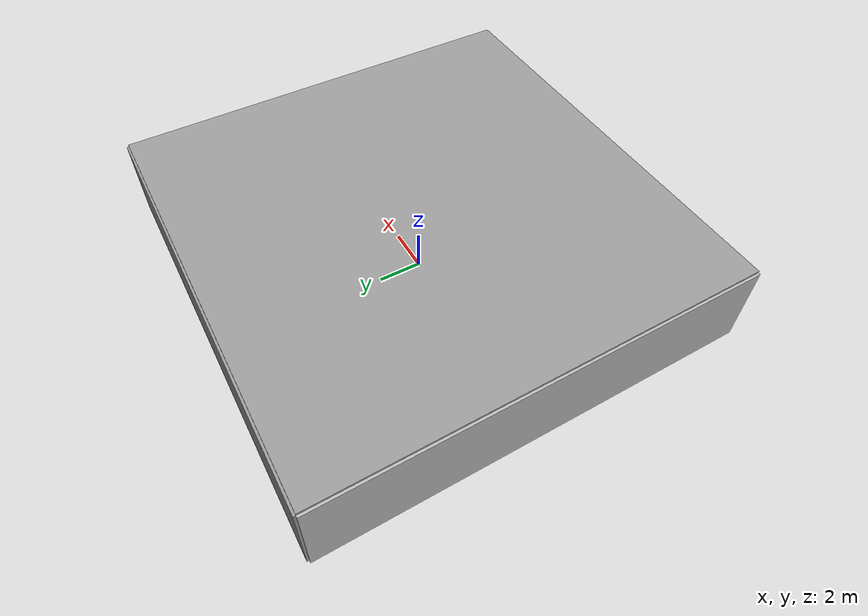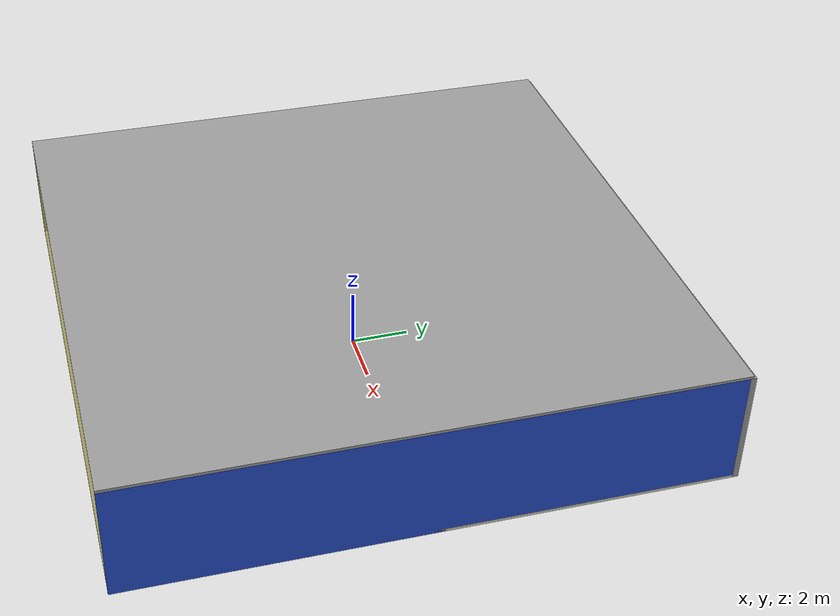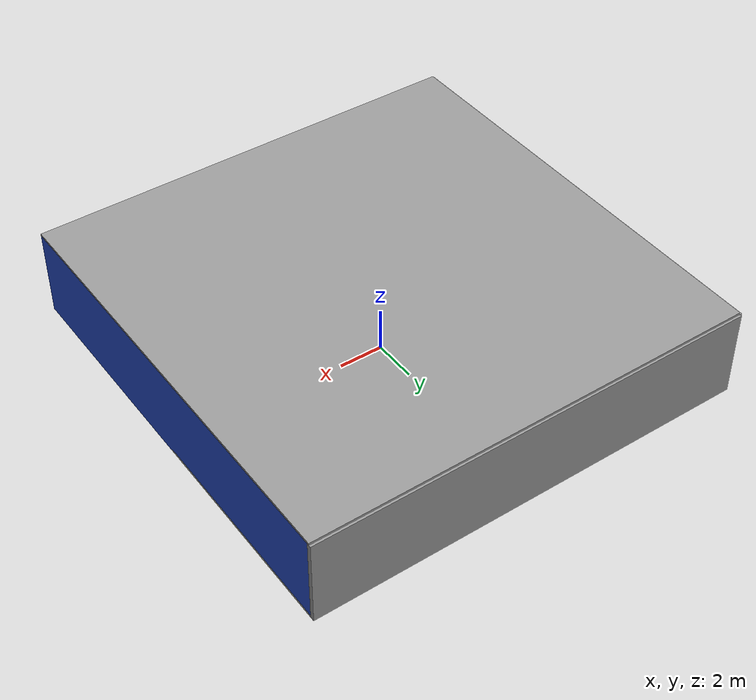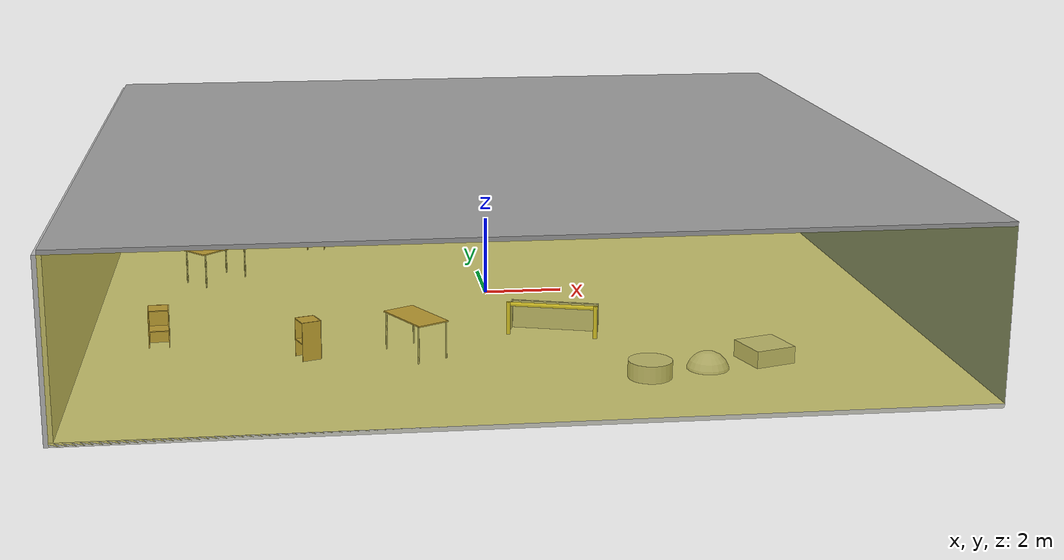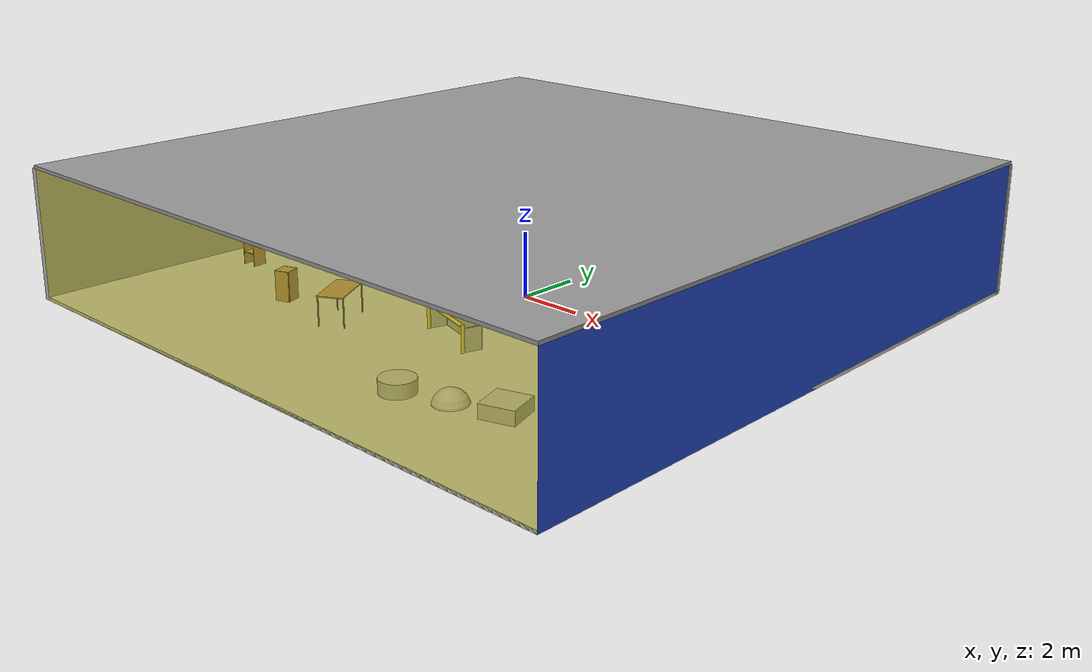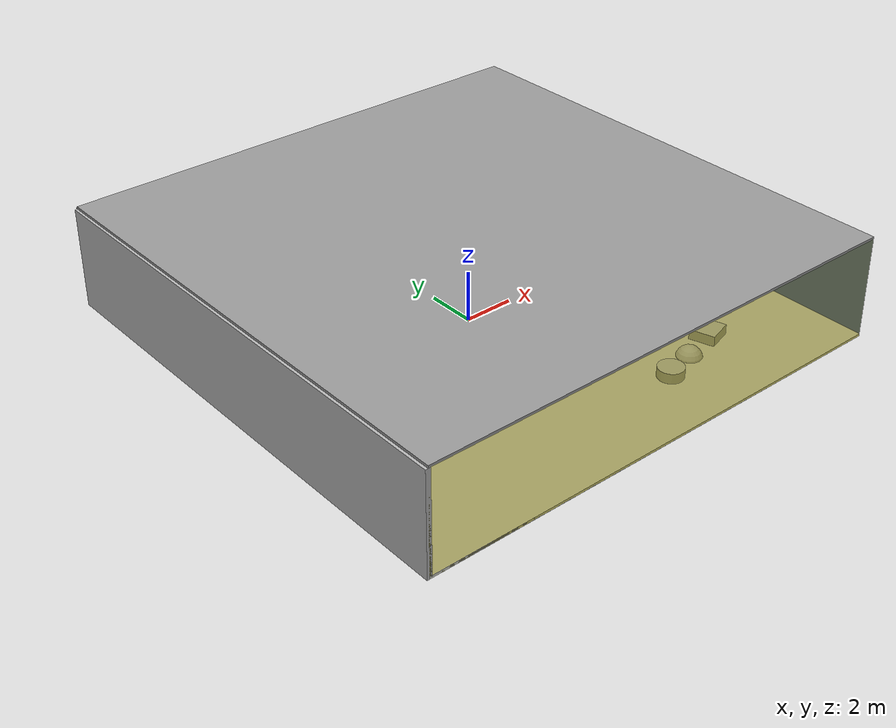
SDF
<sdf version="1.4">
 <world name="default">
  <physics type="ode">
   <max_step_size>0.001</max_step_size>
   <real_time_factor>1</real_time_factor>
   <real_time_update_rate>1000</real_time_update_rate>
   <gravity>0 0 -9.8</gravity>
  </physics>
  <scene><ambient>0.4 0.4 0.4 1</ambient><background>0.7 0.7 0.7 1</background><shadows>1</shadows></scene>
  <model name="Surrounding">
   <static>1</static>
   <link name="Ceiling">
    <collision name="Ceiling_Collision"><geometry><box><size>20 20 0.1</size></box></geometry></collision>
    <visual name="Ceiling_Visual">
     <geometry><box><size>20 20 0.1</size></box></geometry>
     <material>
      <script><uri>file://media/materials/scripts/gazebo.material</uri><name>Gazebo/GreyGradientSky</name></script>
     </material>
    </visual>
    <pose>0 0 4.05 0 0 0</pose>
   </link>
   <link name="Wall_South">
    <collision name="Wall_South_Collision">
     <geometry><box><size>20 0 4</size></box></geometry>
     <pose>0 0 2 0 -0 0</pose>
    </collision>
    <visual name="Wall_South_Visual">
     <pose>0 0 2 0 -0 0</pose>
     <geometry><box><size>20 0 4</size></box></geometry>
     <material>
      <script>
       <uri>file://media/materials/scripts/gazebo.material</uri>
       <name>Gazebo/YellowTransparent</name>
      </script>
     </material>
    </visual>
    <velocity_decay><linear>0</linear><angular>0</angular></velocity_decay>
    <pose>0 -10 0 0 -0 0</pose>
   </link>
   <link name="Wall_East">
    <collision name="Wall_21_Collision">
     <geometry><box><size>20 0 4</size></box></geometry>
     <pose>0 0 2 0 -0 0</pose>
    </collision>
    <visual name="Wall_21_Visual">
     <pose>0 0 2 0 -0 0</pose>
     <geometry><box><size>20 0 4</size></box></geometry>
     <material>
      <script><uri>file://media/materials/scripts/gazebo.material</uri><name>Gazebo/Blue</name></script>
     </material>
    </visual>
    <velocity_decay><linear>0</linear><angular>0</angular></velocity_decay>
    <pose>10 0 0 0 -0 1.5708</pose>
   </link>
   <link name="Wall_North">
    <collision name="Wall_22_Collision">
     <geometry><box><size>20 0.2 4</size></box></geometry>
     <pose>0 0 2 0 -0 0</pose>
    </collision>
    <visual name="Wall_22_Visual">
     <pose>0 0 2 0 -0 0</pose>
     <geometry><box><size>20 0.2 4</size></box></geometry>
     <material>
      <script><uri>file://media/materials/scripts/gazebo.material</uri><name>Gazebo/GreyGradientSky</name></script>
     </material>
    </visual>
    <velocity_decay><linear>0</linear><angular>0</angular></velocity_decay>
    <pose>0 10 0 0 -0 0</pose>
   </link>
   <link name="Wall_West">
    <collision name="Wall_23_Collision">
     <geometry><box><size>20 0.2 4</size></box></geometry>
     <pose>0 0 2 0 -0 0</pose>
    </collision>
    <visual name="Wall_23_Visual">
     <pose>0 0 2 0 -0 0</pose>
     <geometry><box><size>20 0.2 4</size></box></geometry>
     <material>
      <script><uri>file://media/materials/scripts/gazebo.material</uri><name>Gazebo/LightOn</name></script>
     </material>
    </visual>
    <velocity_decay><linear>0</linear><angular>0</angular></velocity_decay>
    <pose>-10 0 0 0 0 -1.5708</pose>
   </link>
   <link name="Ground_link">
    <collision name="collision">
     <pose>0 0 .05 0 -0 0</pose>
     <geometry><box><size>20 20 0.1</size></box></geometry>
    </collision>
    <visual name="visual">
     <pose>0 0 .05 0 -0 0</pose>
     <geometry><box><size>20 20 0.1</size></box></geometry>
     <material>
      <script><uri>file://media/materials/scripts/gazebo.material</uri><name>Gazebo/PaintedWall</name></script>
     </material>
    </visual>
   </link>
   <static>1</static>
  </model>
  <spherical_coordinates>
   <surface_model>EARTH_WGS84</surface_model>
   <latitude_deg>0</latitude_deg>
   <longitude_deg>0</longitude_deg>
   <elevation>0</elevation>
   <heading_deg>0</heading_deg>
  </spherical_coordinates>
  <light name="lightball_0" type="diffuse">
   <diffuse>0.8 0.8 0.8 1</diffuse>
   <specular>0.2 0.2 0.2 1</specular>
   <attenuation>
    <range>100</range>
    <constant>0.7</constant>
    <linear>0.01</linear>
    <quadratic>0.001</quadratic>
   </attenuation>
   <direction>-0.5 0.1 -0.9</direction>
   <pose>2.91720461011 -9.60535225805 3.0987810965 0 0 0</pose>
  </light>
  <light name="lightball_1" type="diffuse">
   <diffuse>0.8 0.8 0.8 1</diffuse>
   <specular>0.2 0.2 0.2 1</specular>
   <attenuation>
    <range>100</range>
    <constant>0.7</constant>
    <linear>0.01</linear>
    <quadratic>0.001</quadratic>
   </attenuation>
   <direction>-0.5 0.1 -0.9</direction>
   <pose>8.68614034443 2.04269228976 3.14798897803 0 0 0</pose>
  </light>
  <light name="lightball_2" type="diffuse">
   <diffuse>0.8 0.8 0.8 1</diffuse>
   <specular>0.2 0.2 0.2 1</specular>
   <attenuation>
    <range>100</range>
    <constant>0.7</constant>
    <linear>0.01</linear>
    <quadratic>0.001</quadratic>
   </attenuation>
   <direction>-0.5 0.1 -0.9</direction>
   <pose>6.55153954758 -1.43274892537 3.64654283115 0 0 0</pose>
  </light>
  <light name="lightball_3" type="diffuse">
   <diffuse>0.8 0.8 0.8 1</diffuse>
   <specular>0.2 0.2 0.2 1</specular>
   <attenuation>
    <range>100</range>
    <constant>0.7</constant>
    <linear>0.01</linear>
    <quadratic>0.001</quadratic>
   </attenuation>
   <direction>-0.5 0.1 -0.9</direction>
   <pose>-7.19439404664 4.71187903618 1.29294215151 0 0 0</pose>
  </light>
  <light name="lightball_4" type="diffuse">
   <diffuse>0.8 0.8 0.8 1</diffuse>
   <specular>0.2 0.2 0.2 1</specular>
   <attenuation>
    <range>100</range>
    <constant>0.7</constant>
    <linear>0.01</linear>
    <quadratic>0.001</quadratic>
   </attenuation>
   <direction>-0.5 0.1 -0.9</direction>
   <pose>4.85097784656 3.71192083204 2.88672937831 0 0 0</pose>
  </light>
  <light name="lightball_5" type="diffuse">
   <diffuse>0.8 0.8 0.8 1</diffuse>
   <specular>0.2 0.2 0.2 1</specular>
   <attenuation>
    <range>100</range>
    <constant>0.7</constant>
    <linear>0.01</linear>
    <quadratic>0.001</quadratic>
   </attenuation>
   <direction>-0.5 0.1 -0.9</direction>
   <pose>9.7188612767 7.99765065775 0.776261511224 0 0 0</pose>
  </light>
  <light name="lightball_6" type="diffuse">
   <diffuse>0.8 0.8 0.8 1</diffuse>
   <specular>0.2 0.2 0.2 1</specular>
   <attenuation>
    <range>100</range>
    <constant>0.7</constant>
    <linear>0.01</linear>
    <quadratic>0.001</quadratic>
   </attenuation>
   <direction>-0.5 0.1 -0.9</direction>
   <pose>5.23421505881 2.97564597997 2.31061742565 0 0 0</pose>
  </light>
  <light name="lightball_7" type="diffuse">
   <diffuse>0.8 0.8 0.8 1</diffuse>
   <specular>0.2 0.2 0.2 1</specular>
   <attenuation>
    <range>100</range>
    <constant>0.7</constant>
    <linear>0.01</linear>
    <quadratic>0.001</quadratic>
   </attenuation>
   <direction>-0.5 0.1 -0.9</direction>
   <pose>-6.26777969946 -3.3883417591 1.85128035538 0 0 0</pose>
  </light>
  <light name="lightball_8" type="diffuse">
   <diffuse>0.8 0.8 0.8 1</diffuse>
   <specular>0.2 0.2 0.2 1</specular>
   <attenuation>
    <range>100</range>
    <constant>0.7</constant>
    <linear>0.01</linear>
    <quadratic>0.001</quadratic>
   </attenuation>
   <direction>-0.5 0.1 -0.9</direction>
   <pose>5.96264500629 -4.55916667637 2.75502605671 0 0 0</pose>
  </light>
  <include><uri>model://cabinet</uri><pose>-8.21425024145 -3.8776550796 0 0 0 1.63155616615</pose></include>
  <include><uri>model://table</uri><pose>-7.08472583751 1.66219955561 0 0 0 0.751866987874</pose></include>
  <include><uri>model://cabinet</uri><pose>-4.73410351465 -5.18668516483 0 0 0 0.345651290234</pose></include>
  <include><uri>model://cabinet</uri><pose>-4.36002242456 4.7045797704 0 0 0 1.49380482834</pose></include>
  <include><uri>model://table</uri><pose>-2.23447625242 -5.17585607849 0 0 0 2.07624993055</pose></include>
  <include>
   <uri>model://robocup_3Dsim_goal</uri>
   <pose>1.09975605725 -4.2418691612 0 0 0 1.27695198377</pose>
  </include>
  <include>
   <uri>model://textured_shapes</uri>
   <pose>4.26033638411 -6.99282584154 0 0 0 1.87204705685</pose>
  </include>
 </world>
</sdf>

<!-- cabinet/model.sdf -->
<sdf version="1.5">
  <model name="cabinet">
    <static>true</static>
    <link name="cabinet_bottom_plate">
      <inertial>
        <pose>0 0 -1 0 0 0</pose>
        <inertia>
          <ixx>2.050000</ixx>
          <ixy>0</ixy>
          <ixz>0</ixz>
          <iyy>2.050000</iyy>
          <iyz>0</iyz>
          <izz>2.050000</izz>
        </inertia>
        <mass>25.000000</mass>
      </inertial>
      <collision name="cabinet_bottom_plate_geom">
        <pose>0 0 0.010000 0 0 0</pose>
        <geometry>
          <box>
            <size>0.450000 0.450000 0.020000</size>
          </box>
        </geometry>
      </collision>
      <visual name="cabinet_bottom_plate_geom_visual">
        <pose>0 0 0.010000 0 0 0</pose>
        <geometry>
          <box>
            <size>0.450000 0.450000 0.020000</size>
          </box>
        </geometry>
        <material>
          <script>
            <uri>model://media/materials/scripts/gazebo.material</uri>
            <name>Gazebo/Wood</name>
          </script>
        </material>
      </visual>
      <collision name="cabinet_bottom_plate_geom_cabinet_back_plate">
        <pose>0.235000 0 0.510000 0 0 0</pose>
        <geometry>
          <box>
            <size>0.020000 0.450000 1.020000</size>
          </box>
        </geometry>
      </collision>
      <visual name="cabinet_bottom_plate_geom_cabinet_back_plate_visual">
        <pose>0.235000 0 0.510000 0 0 0</pose>
        <geometry>
          <box>
            <size>0.020000 0.450000 1.020000</size>
          </box>
        </geometry>
        <material>
          <script>
            <uri>model://media/materials/scripts/gazebo.material</uri>
            <name>Gazebo/Wood</name>
          </script>
        </material>
      </visual>
      <collision name="cabinet_bottom_plate_geom_cabinet_left_plate">
        <pose>0 0.235000 0.510000 0 0 0</pose>
        <geometry>
          <box>
            <size>0.450000 0.020000 1.020000</size>
          </box>
        </geometry>
      </collision>
      <visual name="cabinet_bottom_plate_geom_cabinet_left_plate_visual">
        <pose>0 0.235000 0.510000 0 0 0</pose>
        <geometry>
          <box>
            <size>0.450000 0.020000 1.020000</size>
          </box>
        </geometry>
        <material>
          <script>
            <uri>model://media/materials/scripts/gazebo.material</uri>
            <name>Gazebo/Wood</name>
          </script>
        </material>
      </visual>
      <collision name="cabinet_bottom_plate_geom_cabinet_middle_plate">
        <pose>0 0 0.510000 0 0 0</pose>
        <geometry>
          <box>
            <size>0.450000 0.450000 0.020000</size>
          </box>
        </geometry>
      </collision>
      <visual name="cabinet_bottom_plate_geom_cabinet_middle_plate_visual">
        <pose>0 0 0.510000 0 0 0</pose>
        <geometry>
          <box>
            <size>0.450000 0.450000 0.020000</size>
          </box>
        </geometry>
        <material>
          <script>
            <uri>model://media/materials/scripts/gazebo.material</uri>
            <name>Gazebo/Wood</name>
          </script>
        </material>
      </visual>
      <collision name="cabinet_bottom_plate_geom_cabinet_right_plate">
        <pose>0 -0.235000 0.510000 0 0 0</pose>
        <geometry>
          <box>
            <size>0.450000 0.020000 1.020000</size>
          </box>
        </geometry>
      </collision>
      <visual name="cabinet_bottom_plate_geom_cabinet_right_plate_visual">
        <pose>0 -0.235000 0.510000 0 0 0</pose>
        <geometry>
          <box>
            <size>0.450000 0.020000 1.020000</size>
          </box>
        </geometry>
        <material>
          <script>
            <uri>model://media/materials/scripts/gazebo.material</uri>
            <name>Gazebo/Wood</name>
          </script>
        </material>
      </visual>
      <collision name="cabinet_bottom_plate_geom_cabinet_top_plate">
        <pose>0 0 1.010000 0 0 0</pose>
        <geometry>
          <box>
            <size>0.450000 0.450000 0.020000</size>
          </box>
        </geometry>
      </collision>
      <visual name="cabinet_bottom_plate_geom_cabinet_top_plate_visual">
        <pose>0 0 1.010000 0 0 0</pose>
        <geometry>
          <box>
            <size>0.450000 0.450000 0.020000</size>
          </box>
        </geometry>
        <material>
          <script>
            <uri>model://media/materials/scripts/gazebo.material</uri>
            <name>Gazebo/Wood</name>
          </script>
        </material>
      </visual>
    </link>
  </model>
</sdf>

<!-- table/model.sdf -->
<sdf version="1.5">
  <model name="table">
    <static>true</static>
    <link name="link">
      <collision name="surface">
        <pose>0 0 1.0 0 0 0</pose>
        <geometry>
          <box>
            <size>1.5 0.8 0.03</size>
          </box>
        </geometry>
        <surface>
          <friction>
            <ode>
              <mu>0.6</mu>
              <mu2>0.6</mu2>
            </ode>
          </friction>
        </surface>
      </collision>
      <visual name="visual1">
        <pose>0 0 1.0 0 0 0</pose>
        <geometry>
          <box>
            <size>1.5 0.8 0.03</size>
          </box>
        </geometry>
        <material>
          <script>
            <uri>model://media/materials/scripts/gazebo.material</uri>
            <name>Gazebo/Wood</name>
          </script>
        </material>
      </visual>
      <collision name="front_left_leg">
        <pose>0.68 0.38 0.5 0 0 0</pose>
        <geometry>
          <cylinder>
            <radius>0.02</radius>
            <length>1.0</length>
          </cylinder>
        </geometry>
      </collision>
      <visual name="front_left_leg">
        <pose>0.68 0.38 0.5 0 0 0</pose>
        <geometry>
          <cylinder>
            <radius>0.02</radius>
            <length>1.0</length>
          </cylinder>
        </geometry>
        <material>
          <script>
            <uri>model://media/materials/scripts/gazebo.material</uri>
            <name>Gazebo/Grey</name>
          </script>
        </material>
      </visual>
      <collision name="front_right_leg">
        <pose>0.68 -0.38 0.5 0 0 0</pose>
        <geometry>
          <cylinder>
            <radius>0.02</radius>
            <length>1.0</length>
          </cylinder>
        </geometry>
      </collision>
      <visual name="front_right_leg">
        <pose>0.68 -0.38 0.5 0 0 0</pose>
        <geometry>
          <cylinder>
            <radius>0.02</radius>
            <length>1.0</length>
          </cylinder>
        </geometry>
        <material>
          <script>
            <uri>model://media/materials/scripts/gazebo.material</uri>
            <name>Gazebo/Grey</name>
          </script>
        </material>
      </visual>
      <collision name="back_right_leg">
        <pose>-0.68 -0.38 0.5 0 0 0</pose>
        <geometry>
          <cylinder>
            <radius>0.02</radius>
            <length>1.0</length>
          </cylinder>
        </geometry>
      </collision>
      <visual name="back_right_leg">
        <pose>-0.68 -0.38 0.5 0 0 0</pose>
        <geometry>
          <cylinder>
            <radius>0.02</radius>
            <length>1.0</length>
          </cylinder>
        </geometry>
        <material>
          <script>
            <uri>model://media/materials/scripts/gazebo.material</uri>
            <name>Gazebo/Grey</name>
          </script>
        </material>
      </visual>
      <collision name="back_left_leg">
        <pose>-0.68 0.38 0.5 0 0 0</pose>
        <geometry>
          <cylinder>
            <radius>0.02</radius>
            <length>1.0</length>
          </cylinder>
        </geometry>
      </collision>
      <visual name="back_left_leg">
        <pose>-0.68 0.38 0.5 0 0 0</pose>
        <geometry>
          <cylinder>
            <radius>0.02</radius>
            <length>1.0</length>
          </cylinder>
        </geometry>
        <material>
          <script>
            <uri>model://media/materials/scripts/gazebo.material</uri>
            <name>Gazebo/Grey</name>
          </script>
        </material>
      </visual>
    </link>
  </model>
</sdf>

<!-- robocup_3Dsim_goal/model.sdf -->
<sdf version="1.5">
  <model name="robocup_3d_goal">
    <static>true</static>
    <link name="left_post">
      <pose>0 1.05 0.45 0 0 0</pose>
      <collision name="collision">
        <geometry>
          <cylinder>
            <radius>0.05</radius>
            <length>0.9</length>
          </cylinder>
        </geometry>
      </collision>
      <visual name="visual">
        <geometry>
          <cylinder>
            <radius>0.05</radius>
            <length>0.9</length>
          </cylinder>
        </geometry>
        <material>
          <script>
            <uri>file://media/materials/scripts/gazebo.material</uri>
            <name>Gazebo/ZincYellow</name>
          </script>
        </material>
      </visual>
    </link>
    <link name="left_support_horiz_lower">
      <pose>0.30 1.05 0.01 0 0 0</pose>
      <collision name="collision">
        <geometry>
          <box>
            <size>0.50 0.02 0.02</size>
          </box>
        </geometry>
      </collision>
      <visual name="visual">
        <geometry>
          <box>
            <size>0.50 0.02 0.02</size>
          </box>
        </geometry>
        <material>
          <script>
            <uri>file://media/materials/scripts/gazebo.material</uri>
            <name>Gazebo/White</name>
          </script>
        </material>
      </visual>
    </link>
    <link name="left_support_horiz_upper">
      <pose>0.30 1.05 0.79 0 0 0</pose>
      <collision name="collision">
        <geometry>
          <box>
            <size>0.50 0.02 0.02</size>
          </box>
        </geometry>
      </collision>
      <visual name="visual">
        <geometry>
          <box>
            <size>0.50 0.02 0.02</size>
          </box>
        </geometry>
        <material>
          <script>
            <uri>file://media/materials/scripts/gazebo.material</uri>
            <name>Gazebo/White</name>
          </script>
        </material>
      </visual>
    </link>
    <link name="left_support_vertical">
      <pose>0.56 1.05 0.4 0 1.5708 0</pose>
      <collision name="collision">
        <geometry>
          <box>
            <size>0.80 0.02 0.02</size>
          </box>
        </geometry>
      </collision>
      <visual name="visual">
        <geometry>
          <box>
            <size>0.80 0.02 0.02</size>
          </box>
        </geometry>
        <material>
          <script>
            <uri>file://media/materials/scripts/gazebo.material</uri>
            <name>Gazebo/White</name>
          </script>
        </material>
      </visual>
    </link>
    <link name="right_support_horiz_lower">
      <pose>0.30 -1.05 0.01 0 0 0</pose>
      <collision name="collision">
        <geometry>
          <box>
            <size>0.50 0.02 0.02</size>
          </box>
        </geometry>
      </collision>
      <visual name="visual">
        <geometry>
          <box>
            <size>0.50 0.02 0.02</size>
          </box>
        </geometry>
        <material>
          <script>
            <uri>file://media/materials/scripts/gazebo.material</uri>
            <name>Gazebo/White</name>
          </script>
        </material>
      </visual>
    </link>
    <link name="right_support_horiz_upper">
      <pose>0.30 -1.05 0.79 0 0 0</pose>
      <collision name="collision">
        <geometry>
          <box>
            <size>0.50 0.02 0.02</size>
          </box>
        </geometry>
      </collision>
      <visual name="visual">
        <geometry>
          <box>
            <size>0.50 0.02 0.02</size>
          </box>
        </geometry>
        <material>
          <script>
            <uri>file://media/materials/scripts/gazebo.material</uri>
            <name>Gazebo/White</name>
          </script>
        </material>
      </visual>
    </link>
    <link name="right_support_vertical">
      <pose>0.56 -1.05 0.4 0 1.5708 0</pose>
      <collision name="collision">
        <geometry>
          <box>
            <size>0.80 0.02 0.02</size>
          </box>
        </geometry>
      </collision>
      <visual name="visual">
        <geometry>
          <box>
            <size>0.80 0.02 0.02</size>
          </box>
        </geometry>
        <material>
          <script>
            <uri>file://media/materials/scripts/gazebo.material</uri>
            <name>Gazebo/White</name>
          </script>
        </material>
      </visual>
    </link>
    <link name="center_support_horiz_lower">
      <pose>0.56 0 0.01 0 1.5708 0</pose>
      <collision name="collision">
        <geometry>
          <box>
            <size>0.02 2.08 0.02</size>
          </box>
        </geometry>
      </collision>
      <visual name="visual">
        <geometry>
          <box>
            <size>0.02 2.08 0.02</size>
          </box>
        </geometry>
        <material>
          <script>
            <uri>file://media/materials/scripts/gazebo.material</uri>
            <name>Gazebo/White</name>
          </script>
        </material>
      </visual>
    </link>
    <link name="center_support_horiz_upper">
      <pose>0.56 0 0.79 0 1.5708 0</pose>
      <collision name="collision">
        <geometry>
          <box>
            <size>0.02 2.08 0.02</size>
          </box>
        </geometry>
      </collision>
      <visual name="visual">
        <geometry>
          <box>
            <size>0.02 2.08 0.02</size>
          </box>
        </geometry>
        <material>
          <script>
            <uri>file://media/materials/scripts/gazebo.material</uri>
            <name>Gazebo/White</name>
          </script>
        </material>
      </visual>
    </link>
    <link name="right_post">
      <pose>0 -1.05 0.45 0 0 0</pose>
      <collision name="collision">
        <geometry>
          <cylinder>
            <radius>0.05</radius>
            <length>0.9</length>
          </cylinder>
        </geometry>
      </collision>
      <visual name="visual">
        <geometry>
          <cylinder>
            <radius>0.05</radius>
            <length>0.9</length>
          </cylinder>
        </geometry>
        <material>
          <script>
            <uri>file://media/materials/scripts/gazebo.material</uri>
            <name>Gazebo/ZincYellow</name>
          </script>
        </material>
      </visual>
    </link>
    <link name="crossbar">
      <pose>0 0 0.85 1.57 1.57 0</pose>
      <collision name="collision">
        <geometry>
          <cylinder>
            <radius>0.05</radius>
            <length>2.0</length>
          </cylinder>
        </geometry>
      </collision>
      <visual name="visual">
        <geometry>
          <cylinder>
            <radius>0.05</radius>
            <length>2.0</length>
          </cylinder>
        </geometry>
        <material>
          <script>
            <uri>file://media/materials/scripts/gazebo.material</uri>
            <name>Gazebo/ZincYellow</name>
          </script>
        </material>
      </visual>
    </link>
    <link name="center_net">
      <pose>0.56 0 0.40 0 0 0</pose>
      <collision name="collision">
        <geometry>
          <box>
            <size>0.01 2.1 0.80</size>
          </box>
        </geometry>
      </collision>
      <visual name="visual">
        <geometry>
          <box>
            <size>0.01 2.1 0.80</size>
          </box>
        </geometry>
        <material>
          <script>
            <uri>model://../model_source/models/robocup09_spl_field/materials/scripts/</uri>
            <uri>model://../model_source/models/robocup09_spl_field/materials/textures/</uri>
            <name>RoboCup/Net</name>
          </script>
        </material>
      </visual>
    </link>
    <link name="left_net">
      <pose>0.30 1.05 0.40 0 0 0</pose>
      <collision name="collision">
        <geometry>
          <box>
            <size>0.50 0.01 0.76</size>
          </box>
        </geometry>
      </collision>
      <visual name="visual">
        <geometry>
          <box>
            <size>0.50 0.01 0.76</size>
          </box>
        </geometry>
        <material>
          <script>
            <uri>model://../model_source/models/robocup09_spl_field/materials/scripts/</uri>
            <uri>model://../model_source/models/robocup09_spl_field/materials/textures/</uri>
            <name>RoboCup/Net</name>
          </script>
        </material>
      </visual>
    </link>
    <link name="right_net">
      <pose>0.30 -1.05 0.40 0 0 0</pose>
      <collision name="collision">
        <geometry>
          <box>
            <size>0.50 0.01 0.76</size>
          </box>
        </geometry>
      </collision>
      <visual name="visual">
        <geometry>
          <box>
            <size>0.50 0.01 0.76</size>
          </box>
        </geometry>
        <material>
          <script>
            <uri>model://../model_source/models/robocup09_spl_field/materials/scripts/</uri>
            <uri>model://../model_source/models/robocup09_spl_field/materials/textures/</uri>
            <name>RoboCup/Net</name>
          </script>
        </material>
      </visual>
    </link>
  </model>
</sdf>

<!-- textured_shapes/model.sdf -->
<sdf version="1.6">
  <model name="textured_shapes">
    <pose>0 0 0.5 0 0 0</pose>
    <link name="box">
      <pose>0 -1.5 0 0 0 0</pose>
      <collision name="collision">
        <geometry>
          <box>
            <size>1 1 1</size>
          </box>
        </geometry>
      </collision>
      <visual name="visual">
        <geometry>
          <box>
            <size>1 1 1</size>
          </box>
        </geometry>
        <material>
          <script>
            <uri>model://../model_source/models/textured_shapes/materials/scripts</uri>
            <uri>model://../model_source/models/textured_shapes/materials/textures</uri>
            <name>TexturedShape/Squares</name>
          </script>
        </material>
      </visual>
    </link>
    <link name="sphere">
      <collision name="collision">
        <geometry>
          <sphere>
            <radius>0.5</radius>
          </sphere>
        </geometry>
      </collision>
      <visual name="visual">
        <geometry>
          <sphere>
            <radius>0.5</radius>
          </sphere>
        </geometry>
        <material>
          <script>
            <uri>model://../model_source/models/textured_shapes/materials/scripts</uri>
            <uri>model://../model_source/models/textured_shapes/materials/textures</uri>
            <name>TexturedShape/Squares</name>
          </script>
        </material>
      </visual>
    </link>
    <link name="cylinder">
      <pose>0 1.5 0 0 0 0</pose>
      <collision name="collision">
        <geometry>
          <cylinder>
            <radius>0.5</radius>
            <length>1</length>
          </cylinder>
        </geometry>
      </collision>
      <visual name="visual">
        <geometry>
          <cylinder>
            <radius>0.5</radius>
            <length>1</length>
          </cylinder>
        </geometry>
        <material>
          <script>
            <uri>model://../model_source/models/textured_shapes/materials/scripts</uri>
            <uri>model://../model_source/models/textured_shapes/materials/textures</uri>
            <name>TexturedShape/Squares</name>
          </script>
        </material>
      </visual>
    </link>
  </model>
</sdf>
